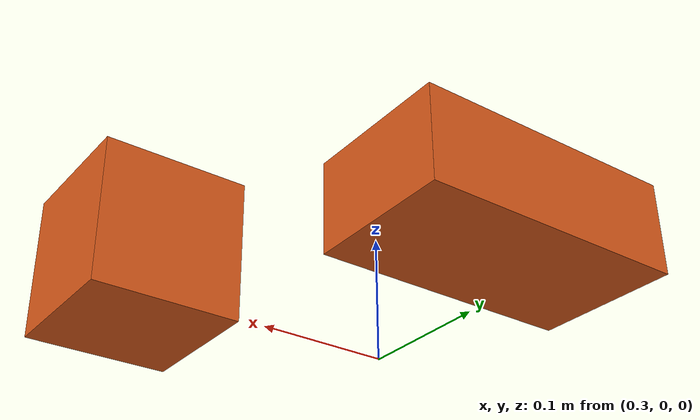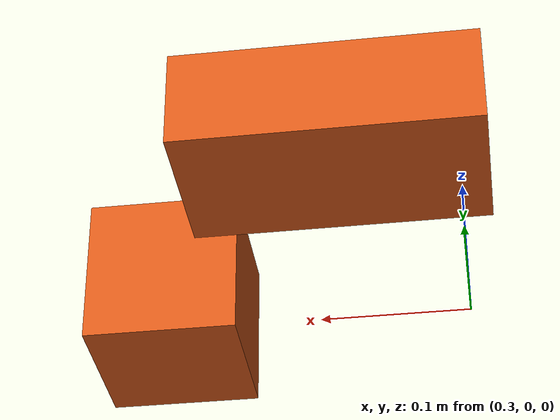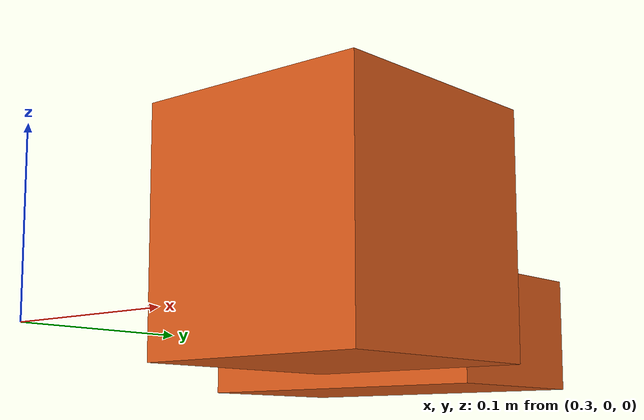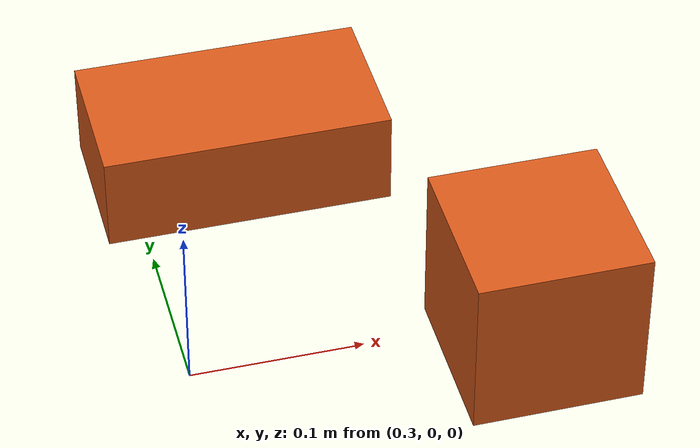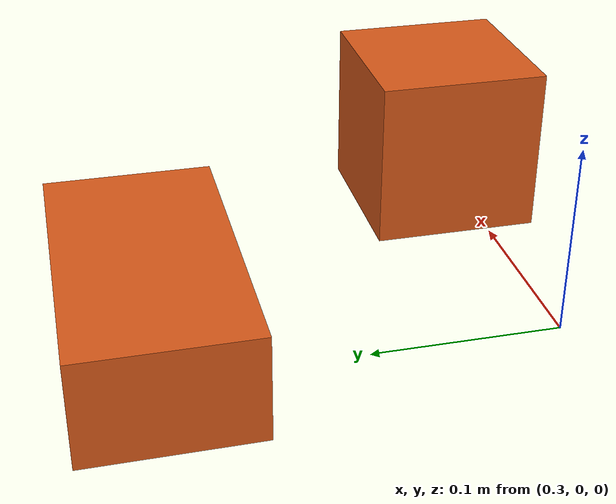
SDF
<?xml version="1.0"?>
<sdf version="1.7">
  <model name="scene_ycb_clutter">
    <static>true</static>
    <link name="clutter_cube"><pose>0.5 0.0 0.021 0 0 0</pose>
      <visual name="clutter_cube_v"><geometry><box><size>0.1 0.1 0.1</size></box></geometry>
        <material><diffuse>0.85 0.35 0.1 1.0</diffuse></material></visual>
      <collision name="clutter_cube_c"><geometry><box><size>0.1 0.1 0.1</size></box></geometry></collision>
    </link>
    <link name="sugar_box"><pose>0.37 0.20 0.001 0 0 0</pose>
      <visual name="sugar_box_v"><geometry><box><size>0.175 0.095 0.06</size></box></geometry>
        <material><diffuse>0.85 0.35 0.1 1.0</diffuse></material></visual>
      <collision name="sugar_box_c"><geometry><box><size>0.175 0.095 0.06</size></box></geometry></collision>
    </link>
  </model>
</sdf>
